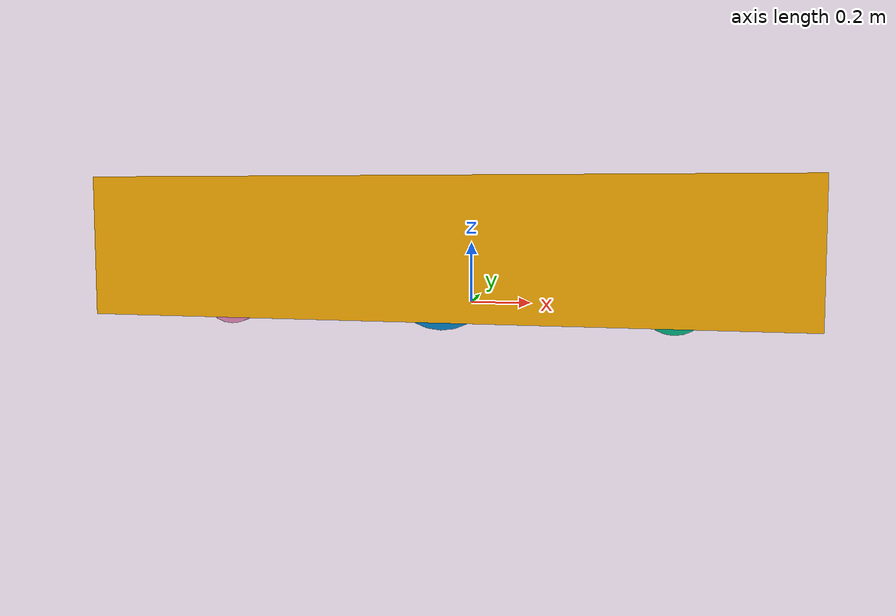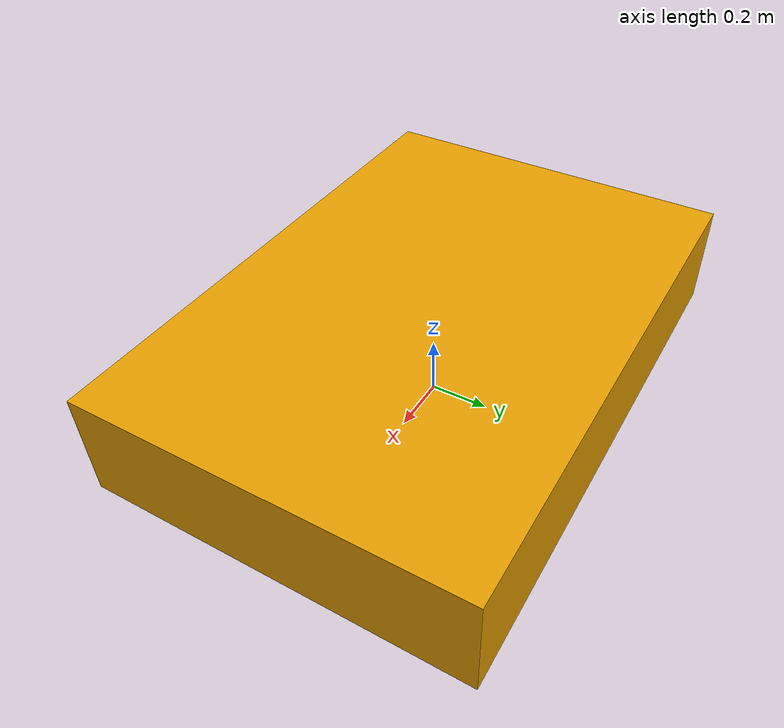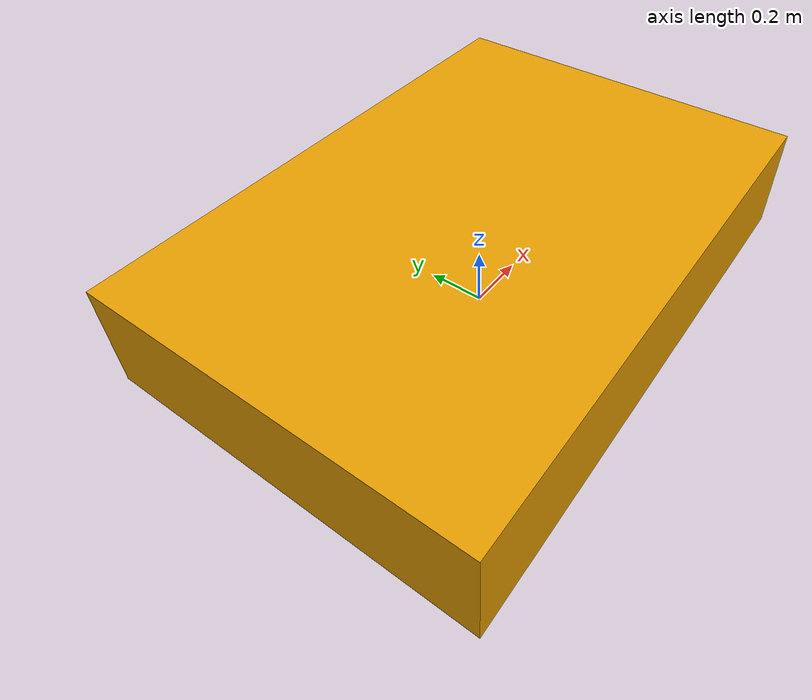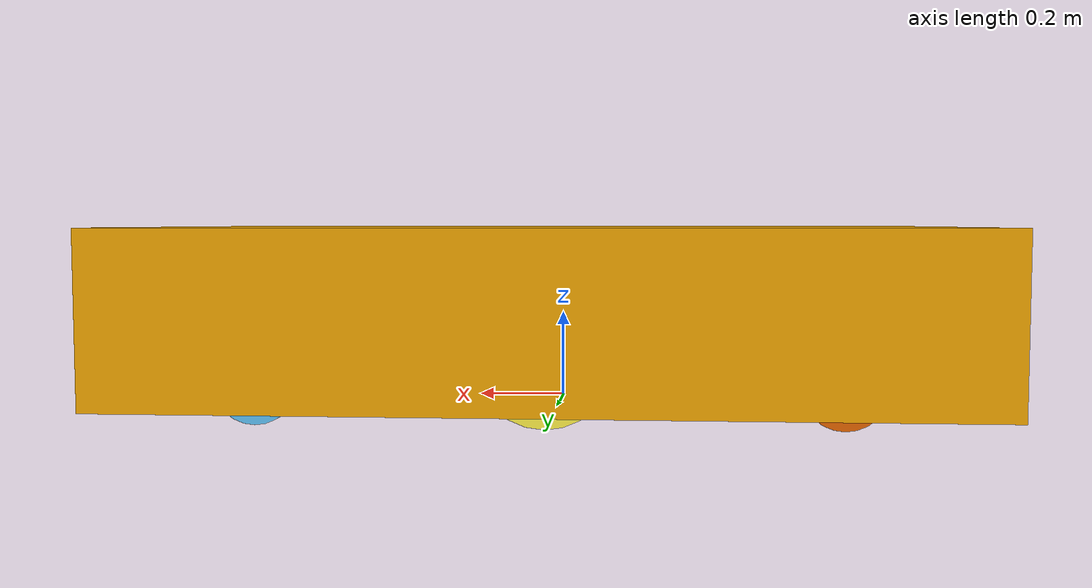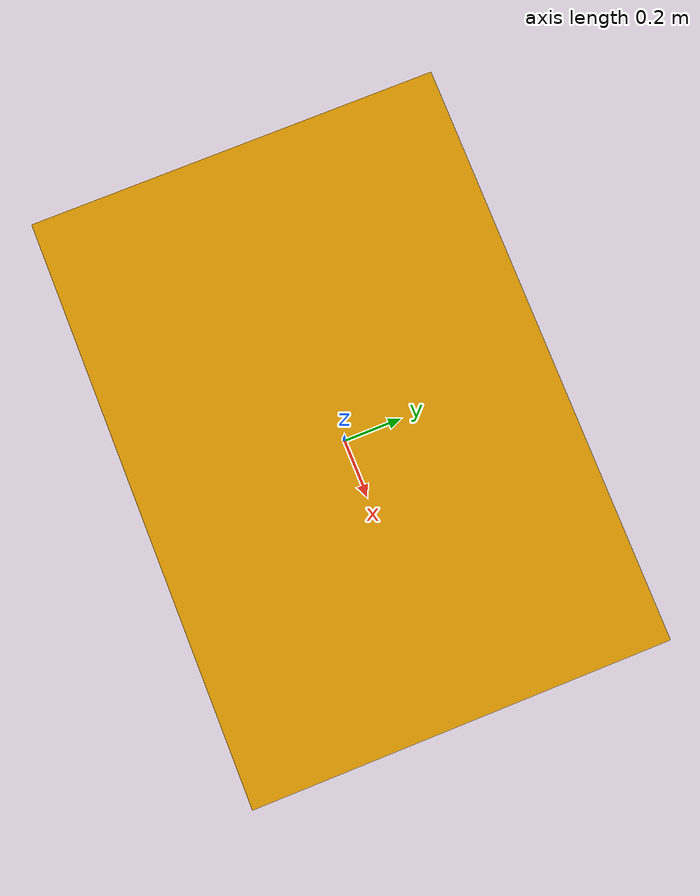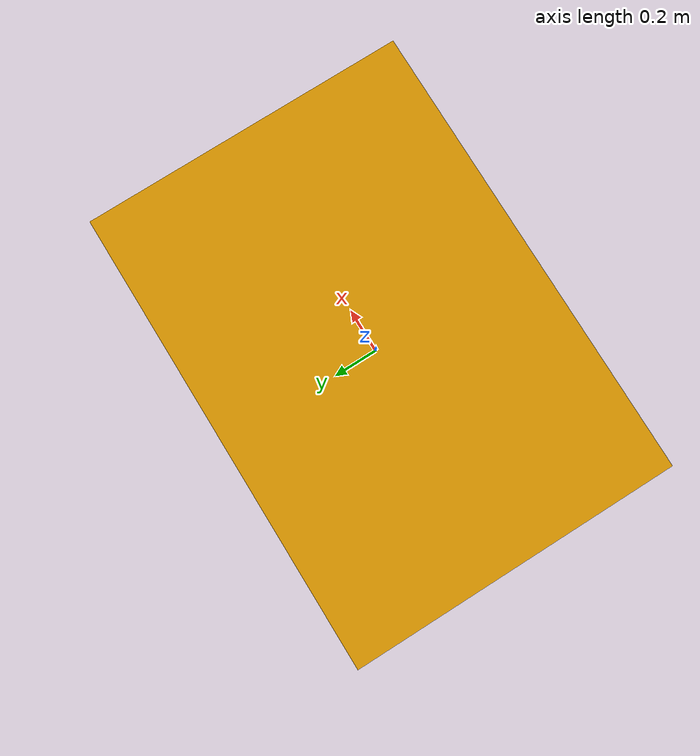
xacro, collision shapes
<?xml version="1.0"?>
<robot xmlns:xacro="http://www.ros.org/wiki/xacro" name="OTTO1500">

  <xacro:property name="base_link_length" value="1.83" />
  <xacro:property name="base_link_width" value="1.29" />
  <xacro:property name="base_link_height" value="0.406" />

  <xacro:property name="ground_clearence" value="0.1" />

  <xacro:property name="wheel_axis_front" value="0.601175" />
  <xacro:property name="wheel_axis_back" value="-0.601175" />
  <xacro:property name="wheel_track" value="0.475812" />

  <xacro:property name="wheel_front_back_radius" value="0.09" />
  <xacro:property name="wheel_front_back_length" value="0.061434" />
  <xacro:property name="wheel_center_radius" value="0.147" />
  <xacro:property name="wheel_center_length" value="0.1" />

  <link name="base_link">
    <inertial>
      <origin xyz="0. 0. 0." />
      <mass value="327" />
      <inertia ixx="49.84" ixy="0." ixz="0." iyy="136.60" iyz="0." izz="95.75"/>
    </inertial>
    <visual>
      <origin rpy="0. 0. ${pi/2}" xyz="0. 0. 0."/>
      <geometry>
        <mesh filename="../meshes/otto1500_body.stl" scale="1.0 1.0 1.0" />
      </geometry>
    </visual>
    <collision>
      <origin rpy="0. 0. ${pi/2}" xyz="0. 0. ${base_link_height* (0.5 + ground_clearence/2)}"/>
      <geometry>
        <box size="${base_link_width} ${base_link_length} ${base_link_height*(1 - ground_clearence)}" />
      </geometry>
    </collision>
  </link>

  <!-- Wheel front left -->
  <link name="wheel_FL">
    <inertial>
      <origin xyz="0. 0. 0." />
      <mass value="50" />
      <inertia ixx="1." ixy="0." ixz="0." iyy="1." iyz="0." izz="1."/>
    </inertial>
    <visual>
      <origin rpy="0. 0. ${pi/2}" xyz="0. 0. ${-wheel_front_back_radius}"/>
      <geometry>
        <mesh filename="../meshes/otto1500_wheel_front.stl" scale="1.0 1.0 1.0" />
      </geometry>
    </visual>
    <collision>
      <origin rpy="${pi/2} ${pi/2} 0." xyz="0. 0. 0."/>
      <geometry>
        <cylinder radius="${wheel_front_back_radius}" length="${wheel_front_back_length}"/>
      </geometry>
    </collision>
  </link>
  <joint name="wheel_FL_joint" type="continuous">
    <parent link="base_link" />
    <child link="wheel_FL" />
    <axis xyz="0. 1. 0." />
    <origin rpy="0. 0. 0." xyz="${wheel_axis_front} ${wheel_track} ${wheel_front_back_radius}" />
  </joint>

  <link name="wheel_FR">
    <inertial>
      <origin xyz="0. 0. 0." />
      <mass value="50" />
      <inertia ixx="1." ixy="0." ixz="0." iyy="1." iyz="0." izz="1."/>
    </inertial>
    <visual>
      <origin rpy="0. 0. ${pi/2}" xyz="0. 0. ${-wheel_front_back_radius}"/>
      <geometry>
        <mesh filename="../meshes/otto1500_wheel_front.stl" scale="1.0 1.0 1.0" />
      </geometry>
    </visual>
    <collision>
      <origin rpy="${pi/2} ${pi/2} 0." xyz="0. 0. 0."/>
      <geometry>
        <cylinder radius="${wheel_front_back_radius}" length="${wheel_front_back_length}"/>
      </geometry>
    </collision>
  </link>
  <joint name="wheel_FR_joint" type="continuous">
    <parent link="base_link" />
    <child link="wheel_FR" />
    <axis xyz="0. 1. 0." />
    <origin rpy="0. 0. 0." xyz="${wheel_axis_front} ${-wheel_track} ${wheel_front_back_radius}" />
  </joint>

  <link name="wheel_CL">
    <inertial>
      <origin xyz="0. 0. 0." />
      <mass value="50" />
      <inertia ixx="1." ixy="0." ixz="0." iyy="1." iyz="0." izz="1."/>
    </inertial>
    <visual>
      <origin rpy="0. 0. ${pi/2}" xyz="0. 0. ${-wheel_center_radius}"/>
      <geometry>
        <mesh filename="../meshes/otto1500_wheel_center.stl" scale="1.0 1.0 1.0" />
      </geometry>
    </visual>
    <collision>
      <origin rpy="${pi/2} ${pi/2} 0." xyz="0. 0. 0."/>
      <geometry>
        <cylinder radius="${wheel_center_radius}" length="${wheel_center_length}"/>
      </geometry>
    </collision>
  </link>
  <joint name="wheel_CL_joint" type="continuous">
    <parent link="base_link" />
    <child link="wheel_CL" />
    <axis xyz="0. 1. 0." />
    <origin rpy="0. 0. 0." xyz="0. ${wheel_track} ${wheel_center_radius}" />
  </joint>

  <link name="wheel_CR">
    <inertial>
      <origin xyz="0. 0. 0." />
      <mass value="50" />
      <inertia ixx="1." ixy="0." ixz="0." iyy="1." iyz="0." izz="1."/>
    </inertial>
    <visual>
      <origin rpy="0. 0. ${pi/2}" xyz="0. 0. ${-wheel_center_radius}"/>
      <geometry>
        <mesh filename="../meshes/otto1500_wheel_center.stl" scale="1.0 1.0 1.0" />
      </geometry>
    </visual>
    <collision>
      <origin rpy="${pi/2} ${pi/2} 0." xyz="0. 0. 0."/>
      <geometry>
        <cylinder radius="${wheel_center_radius}" length="${wheel_center_length}"/>
      </geometry>
    </collision>
  </link>
  <joint name="wheel_CR_joint" type="continuous">
    <parent link="base_link" />
    <child link="wheel_CR" />
    <axis xyz="0. 1. 0." />
    <origin rpy="0. 0. 0." xyz="0. ${-wheel_track} ${wheel_center_radius}" />
  </joint>

  <link name="wheel_RL">
    <inertial>
      <origin xyz="0. 0. 0." />
      <mass value="50" />
      <inertia ixx="1." ixy="0." ixz="0." iyy="1." iyz="0." izz="1."/>
    </inertial>
    <visual>
      <origin rpy="0. 0. ${pi/2}" xyz="0. 0. ${-wheel_front_back_radius}"/>
      <geometry>
        <mesh filename="../meshes/otto1500_wheel_back.stl" scale="1.0 1.0 1.0" />
      </geometry>
    </visual>
    <collision>
      <origin rpy="${pi/2} ${pi/2} 0." xyz="0. 0. 0."/>
      <geometry>
        <cylinder radius="${wheel_front_back_radius}" length="${wheel_front_back_length}"/>
      </geometry>
    </collision>
  </link>
  <joint name="wheel_RL_joint" type="continuous">
    <parent link="base_link" />
    <child link="wheel_RL" />
    <axis xyz="0. 1. 0." />
    <origin rpy="0. 0. 0." xyz="${wheel_axis_back} ${wheel_track} ${wheel_front_back_radius}" />
  </joint>

  <link name="wheel_RR">
    <inertial>
      <origin xyz="0. 0. 0." />
      <mass value="50" />
      <inertia ixx="1." ixy="0." ixz="0." iyy="1." iyz="0." izz="1."/>
    </inertial>
    <visual>
      <origin rpy="0. 0. ${pi/2}" xyz="0. 0. ${-wheel_front_back_radius}"/>
      <geometry>
        <mesh filename="../meshes/otto1500_wheel_back.stl" scale="1.0 1.0 1.0" />
      </geometry>
    </visual>
    <collision>
      <origin rpy="${pi/2} ${pi/2} 0." xyz="0. 0. 0."/>
      <geometry>
        <cylinder radius="${wheel_front_back_radius}" length="${wheel_front_back_length}"/>
      </geometry>
    </collision>
  </link>
  <joint name="wheel_RR_joint" type="continuous">
    <parent link="base_link" />
    <child link="wheel_RR" />
    <axis xyz="0. 1. 0." />
    <origin rpy="0. 0. 0." xyz="${wheel_axis_back} ${-wheel_track} ${wheel_front_back_radius}" />
  </joint>

</robot>
